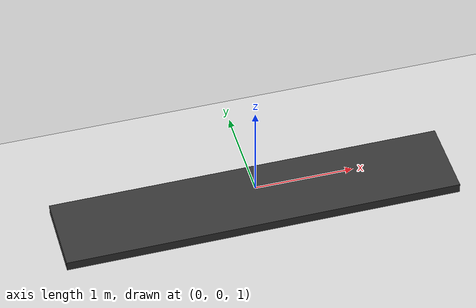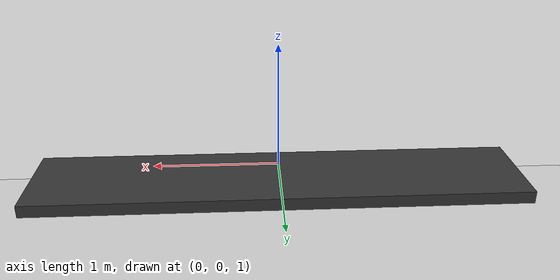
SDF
<?xml version="1.0"?>
<sdf version="1.7">
  <world name="conveyor_world">
    <plugin name="gazebo_ros_init" filename="libgazebo_ros_init.so"/>
    <plugin name="gazebo_ros_factory" filename="libgazebo_ros_factory.so"/>

    <gravity>0 0 -9.81</gravity>

    <include>
      <uri>model://sun</uri>
    </include>

    <include>
      <uri>model://ground_plane</uri>
    </include>

    <model name="conveyor_table">
      <static>true</static>
      <pose>0 0 0 0 0 0</pose>
      <link name="conveyor_link">
        <pose>0 0 0.85 0 0 0</pose>
        <collision name="collision">
          <geometry>
            <box>
              <size>4.0 0.8 0.1</size>
            </box>
          </geometry>
          <surface>
            <friction>
              <ode>
                <mu>1.2</mu>
                <mu2>1.2</mu2>
              </ode>
            </friction>
          </surface>
        </collision>
        <visual name="visual">
          <geometry>
            <box>
              <size>4.0 0.8 0.1</size>
            </box>
          </geometry>
          <material>
            <ambient>0.2 0.2 0.2 1</ambient>
            <diffuse>0.2 0.2 0.2 1</diffuse>
          </material>
        </visual>
      </link>
    </model>

    <plugin name="conveyor_motion" filename="libconveyor_plugin.so">
      <min_x>-2.0</min_x>
      <max_x>2.0</max_x>
      <min_y>-0.35</min_y>
      <max_y>0.35</max_y>
      <min_z>0.88</min_z>
      <max_z>1.2</max_z>
      <velocity>0.35</velocity>
    </plugin>
  </world>
</sdf>
